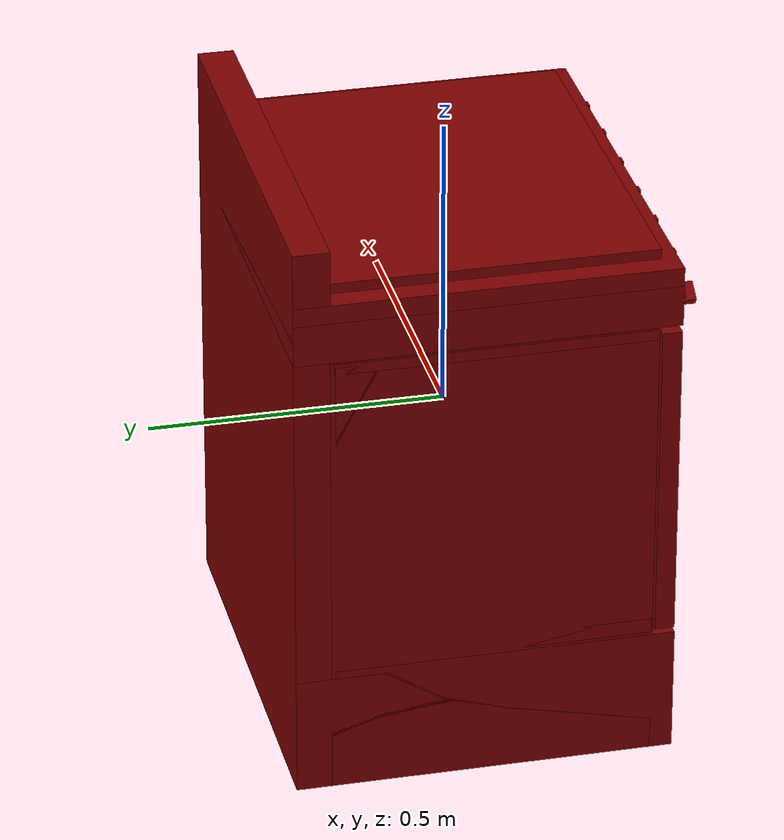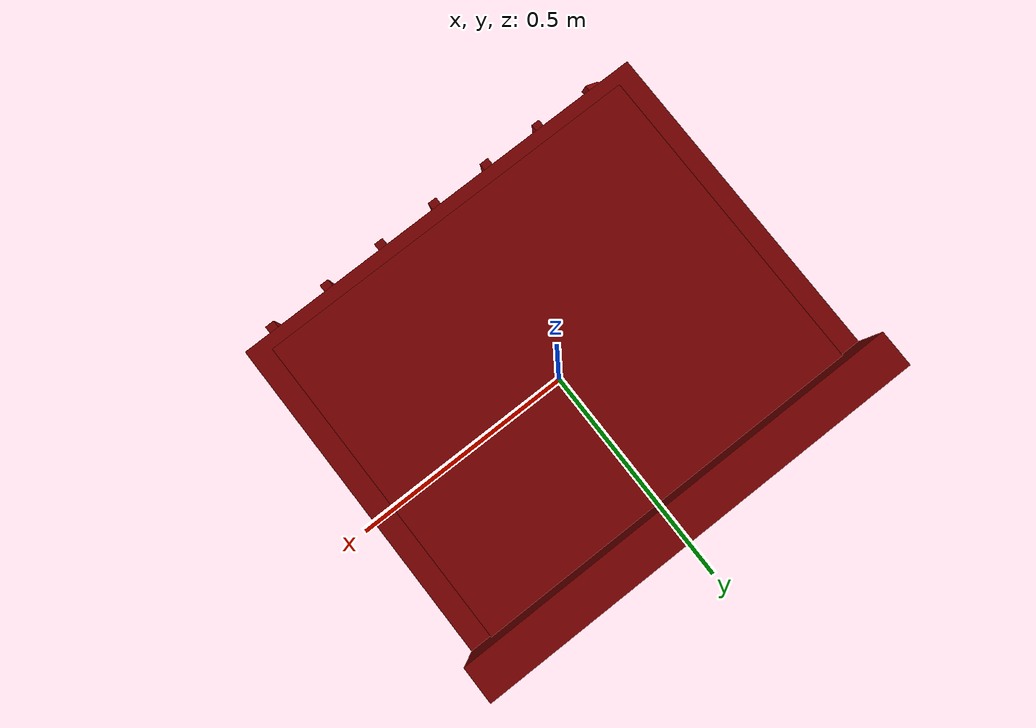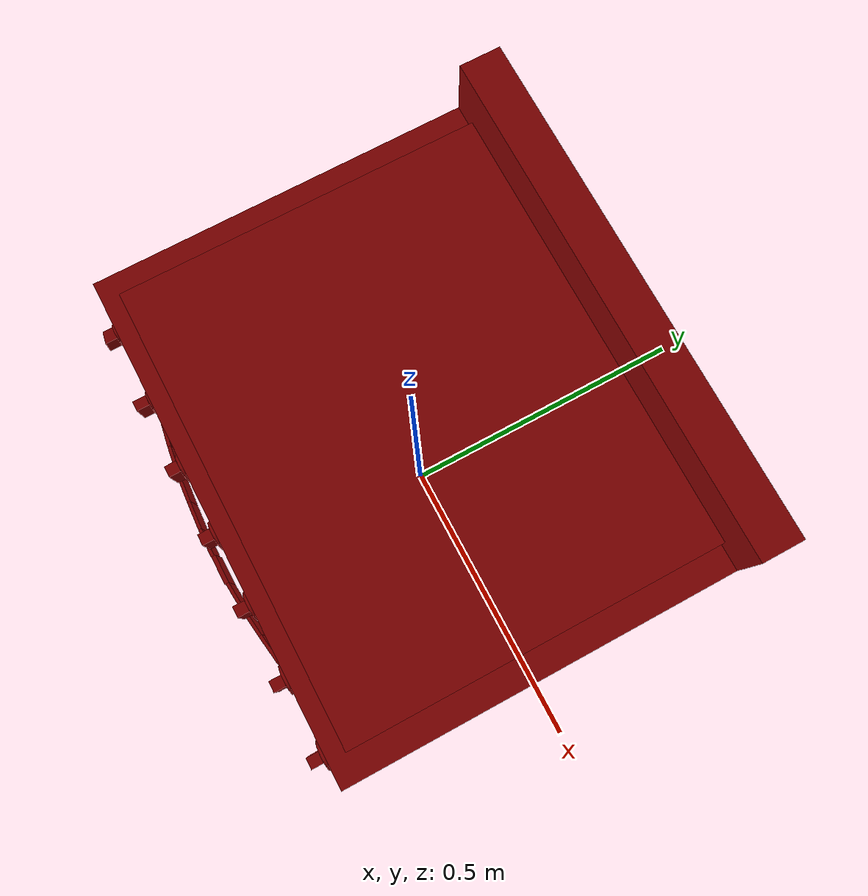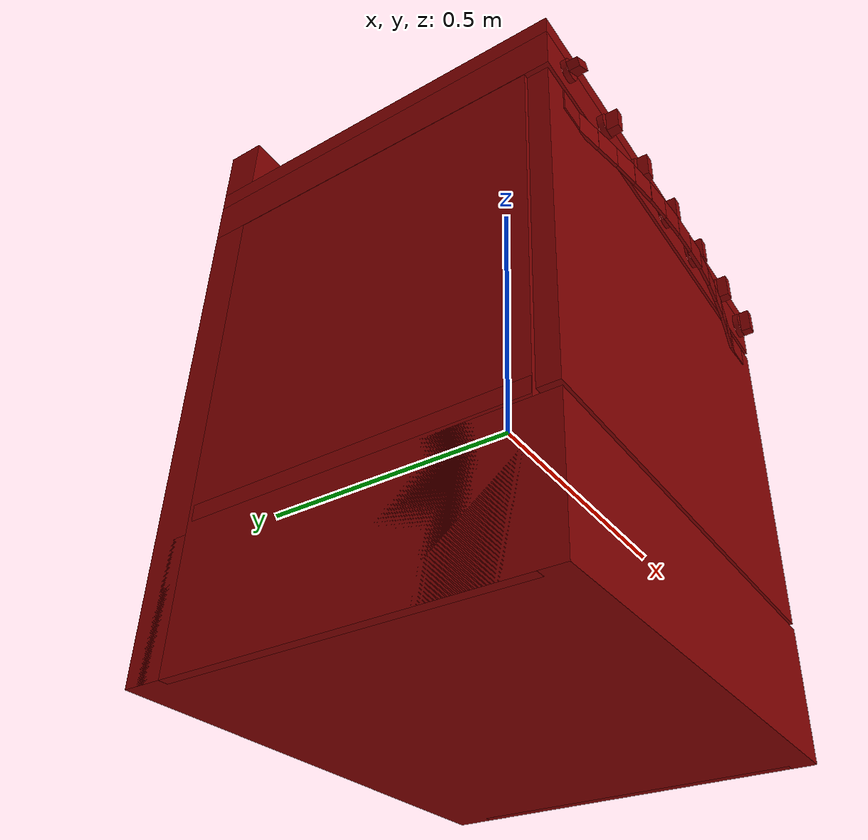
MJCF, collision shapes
<?xml version='1.0' encoding='UTF-8'?>
<mujoco model="model">
  <option timestep="0.002" gravity="0.0 0.0 -9.81"/>
  <compiler angle="radian"/>
  <asset>
    <mesh file="visuals/door.obj" name="door_vis"/>
    <mesh file="visuals/door_Clear.obj" name="door_Clear_vis"/>
    <mesh file="visuals/knob_center.obj" name="knob_center_vis"/>
    <mesh file="visuals/knob_front_left.obj" name="knob_front_left_vis"/>
    <mesh file="visuals/knob_front_right.obj" name="knob_front_right_vis"/>
    <mesh file="visuals/knob_rear_left.obj" name="knob_rear_left_vis"/>
    <mesh file="visuals/knob_rear_right.obj" name="knob_rear_right_vis"/>
    <mesh file="visuals/knob_temp.obj" name="knob_temp_vis"/>
    <mesh file="visuals/knob_time.obj" name="knob_time_vis"/>
    <mesh file="visuals/rack0.obj" name="rack0_vis"/>
    <mesh file="visuals/Body001.obj" name="Body001_vis"/>
    <texture file="visuals/T_BC001.png" name="Body001_material" type="2d"/>
    <material name="Body001_material" rgba="1 1 1 1.0" texture="Body001_material" shininess="0.1" specular="5"/>
    <texture file="visuals/T_BC001.png" name="door_material" type="2d"/>
    <material name="door_material" rgba="1 1 1 1.0" texture="door_material" shininess="0.1" specular="5"/>
    <material name="door_Clear_material" rgba="0.055541425943374634 0.055541425943374634 0.055541425943374634 0.8" shininess="0.4472135901451111" specular="0.3103448502657381"/>
    <texture file="visuals/T_BC001.png" name="knob_center_material" type="2d"/>
    <material name="knob_center_material" rgba="1 1 1 1.0" texture="knob_center_material" shininess="0.1" specular="5"/>
    <texture file="visuals/T_BC001.png" name="knob_front_left_material" type="2d"/>
    <material name="knob_front_left_material" rgba="1 1 1 1.0" texture="knob_front_left_material" shininess="0.1" specular="5"/>
    <texture file="visuals/T_BC001.png" name="knob_front_right_material" type="2d"/>
    <material name="knob_front_right_material" rgba="1 1 1 1.0" texture="knob_front_right_material" shininess="0.1" specular="5"/>
    <texture file="visuals/T_BC001.png" name="knob_rear_left_material" type="2d"/>
    <material name="knob_rear_left_material" rgba="1 1 1 1.0" texture="knob_rear_left_material" shininess="0.1" specular="5"/>
    <texture file="visuals/T_BC001.png" name="knob_rear_right_material" type="2d"/>
    <material name="knob_rear_right_material" rgba="1 1 1 1.0" texture="knob_rear_right_material" shininess="0.1" specular="5"/>
    <texture file="visuals/T_BC001.png" name="knob_temp_material" type="2d"/>
    <material name="knob_temp_material" rgba="1 1 1 1.0" texture="knob_temp_material" shininess="0.1" specular="5"/>
    <texture file="visuals/T_BC001.png" name="knob_time_material" type="2d"/>
    <material name="knob_time_material" rgba="1 1 1 1.0" texture="knob_time_material" shininess="0.1" specular="5"/>
    <texture file="visuals/T_BC001.png" name="rack0_material" type="2d"/>
    <material name="rack0_material" rgba="1 1 1 1.0" texture="rack0_material" shininess="0.1" specular="5"/>
  </asset>
  <default>
    <default class="visual">
      <geom conaffinity="0" contype="0" group="1" type="mesh"/>
    </default>
    <default class="collision">
      <geom group="0" rgba="0.5 0 0 0.5"/>
    </default>
    <default class="spawn">
      <geom group="0" rgba="1 1 1 0.5" contype="0" conaffinity="0"/>
      <site group="0" rgba="1 1 1 0.5"/>
    </default>
    <default class="region">
      <geom group="1" conaffinity="0" contype="0" rgba="0 1 0 0"/>
    </default>
  </default>
  <worldbody>
    <body>
      <body name="object">
        <geom mesh="Body001_vis" type="mesh" solimp="0.998 0.998 0.001" solref="0.001 1" friction="0.95 0.3 0.1" class="visual" material="Body001_material"/>
        <geom type="box" pos="6.490154191851616e-07 0.30399298667907715 -0.0001319174189120531" size="0.37950000166893005 0.030633658170700073 0.4929412603378296" quat="1.0 0.0 0.0 0.0" class="collision"/>
        <geom type="box" pos="9.247881962437532e-07 0.01607316918671131 0.38297146558761597" size="0.37950047850608826 0.3185533583164215 0.01605180837213993" quat="1.0 0.0 0.0 0.0" class="collision"/>
        <geom type="box" pos="-0.3719644546508789 0.005501424893736839 -0.09880691766738892" size="0.007534903474152088 0.2695953845977783 0.3942725956439972" quat="1.0 0.0 0.0 0.0" class="collision"/>
        <geom type="box" pos="0.3719663619995117 0.005501288454979658 -0.0988069400191307" size="0.007534792181104422 0.2695951461791992 0.3942723870277405" quat="1.0 0.0 0.0 0.0" class="collision"/>
        <geom type="box" pos="-0.0003282291581854224 0.002114064060151577 0.28348594903945923" size="0.37917107343673706 0.26609471440315247 0.009091421961784363" quat="1.0 0.0 0.0 0.0" class="collision"/>
        <geom type="box" pos="-0.0003283511323388666 0.0025597289204597473 -0.2571186423301697" size="0.3791711926460266 0.26564887166023254 0.01277067605406046" quat="1.0 0.0 0.0 0.0" class="collision"/>
        <geom type="box" pos="-0.00032822907087393105 -0.017137626186013222 -0.38388580083847046" size="0.37917107343673706 0.28534603118896484 0.10918741673231125" quat="1.0 0.0 0.0 0.0" class="collision"/>
        <geom type="box" pos="9.200302883982658e-07 0.2244304120540619 -0.02571159601211548" size="0.37950021028518677 0.042242273688316345 0.3127388656139374" quat="1.0 0.0 0.0 0.0" class="collision"/>
        <geom type="box" pos="5.369074642658234e-07 0.016116617247462273 -0.39065417647361755" size="0.3794998526573181 0.318509578704834 0.10241959244012833" quat="1.0 0.0 0.0 0.0" class="collision"/>
        <geom type="box" pos="0.0002088821493089199 0.002356607234105468 0.4074528217315674" size="0.3397592306137085 0.2768365144729614 0.008890227414667606" quat="1.0 0.0 0.0 0.0" class="collision"/>
        <geom type="box" pos="0.35568249225616455 -0.04684135317802429 0.024103298783302307" size="0.009308365173637867 0.2168421894311905 0.005590522196143866" quat="1.0 0.0 0.0 0.0" class="collision"/>
        <geom type="box" pos="-0.35767704248428345 -0.04684135317802429 0.024103298783302307" size="0.009308365173637867 0.2168421894311905 0.005590518936514854" quat="1.0 0.0 0.0 0.0" class="collision"/>
        <geom type="box" pos="9.133765388469328e-07 0.01607316918671131 0.33178508281707764" size="0.37950047850608826 0.3185533583164215 0.03513485565781593" quat="1.0 0.0 0.0 0.0" class="collision"/>
        <body name="door">
          <joint axis="1.0 0.0 0.0" pos="6.915070116519928e-07 -0.2990294098854065 -0.2656201124191284" limited="true" name="door_joint" range="0.0 1.5707963267948966" type="hinge" damping="1" frictionloss="1" armature=".01" stiffness="0.05"/>
          <geom mesh="door_vis" type="mesh" solimp="0.998 0.998 0.001" solref="0.001 1" friction="0.95 0.3 0.1" class="visual" material="door_material"/>
          <geom class="collision" type="box" pos="-0.0003282262769062072 -0.28507494926452637 0.009530797600746155" size="0.37917107343673706 0.016665976494550705 0.2750031352043152" quat="1.0 0.0 0.0 0.0" name="door_main"/>
          <geom type="box" pos="-0.3148961663246155 -0.30137747526168823 0.2613299787044525" size="0.022222768515348434 0.0024574706330895424 0.01903548277914524" quat="1.0 0.0 0.0 0.0" class="collision"/>
          <geom type="box" pos="-0.270940363407135 -0.30515754222869873 0.26056957244873047" size="0.0024574636481702328 0.022222571074962616 0.0205561351031065" quat="0.6362748742103577 0.0 0.0 -0.7714624404907227" class="collision"/>
          <geom type="box" pos="-0.22743520140647888 -0.3138009309768677 0.26056957244873047" size="0.0024574636481702328 0.022222571074962616 0.0205561351031065" quat="0.6362748742103577 0.0 0.0 -0.7714624404907227" class="collision"/>
          <geom type="box" pos="-0.1837860643863678 -0.32179611921310425 0.26056957244873047" size="0.0024574636481702328 0.022222576662898064 0.0205561351031065" quat="0.6439476609230042 0.0 0.0 -0.7650695443153381" class="collision"/>
          <geom type="box" pos="-0.13977670669555664 -0.3284947872161865 0.26056957244873047" size="0.0024574636481702328 0.022222567349672318 0.0205561351031065" quat="0.6602786183357239 0.0 0.0 -0.7510207295417786" class="collision"/>
          <geom type="box" pos="-0.09539932012557983 -0.33354467153549194 0.26056957244873047" size="0.0024574636481702328 0.022222572937607765 0.0205561351031065" quat="0.678578794002533 0.0 0.0 -0.7345276474952698" class="collision"/>
          <geom type="box" pos="-0.05112898722290993 -0.3366588354110718 0.26056957244873047" size="0.0024574636481702328 0.022222572937607765 0.0205561351031065" quat="0.6858806014060974 0.0 0.0 -0.7277140617370605" class="collision"/>
          <geom class="collision" type="box" pos="-0.0066461567766964436 -0.3383820056915283 0.26056957244873047" size="0.0024574636481702328 0.022222572937607765 0.0205561351031065" quat="0.7013971209526062 0.0 0.0 -0.7127707004547119" name="door_handle_main"/>
          <geom type="box" pos="0.03728786110877991 -0.33745628595352173 0.26056957244873047" size="0.022292759269475937 0.0032048900611698627 0.0205561351031065" quat="1.0 0.0 0.0 0.0" class="collision"/>
          <geom type="box" pos="0.08173882961273193 -0.335046648979187 0.26056957244873047" size="0.0024574636481702328 0.022222574800252914 0.0205561351031065" quat="0.7337282299995422 0.0 0.0 -0.6794430613517761" class="collision"/>
          <geom type="box" pos="0.1260986328125 -0.3303929567337036 0.26056957244873047" size="0.0024574636481702328 0.022222571074962616 0.0205561351031065" quat="0.7502427101135254 0.0 0.0 -0.6611624956130981" class="collision"/>
          <geom type="box" pos="0.17006200551986694 -0.32435983419418335 0.26056957244873047" size="0.0024574636481702328 0.022222578525543213 0.0205561351031065" quat="0.7568084001541138 0.0 0.0 -0.6536368131637573" class="collision"/>
          <geom type="box" pos="0.21386264264583588 -0.3166324496269226 0.26056957244873047" size="0.0024574636481702328 0.022222574800252914 0.0205561351031065" quat="0.7731620073318481 0.0 0.0 -0.6342085599899292" class="collision"/>
          <geom type="box" pos="0.25716614723205566 -0.30790263414382935 0.26056957244873047" size="0.0024574636481702328 0.022222574800252914 0.0205561351031065" quat="0.7731620073318481 0.0 0.0 -0.6342085599899292" class="collision"/>
          <geom type="box" pos="0.3008153438568115 -0.300037145614624 0.26056957244873047" size="0.0024574636481702328 0.022222571074962616 0.0205561351031065" quat="0.7578297257423401 0.0 0.0 -0.6524524092674255" class="collision"/>
          <geom type="box" pos="0.3170894980430603 -0.3001844882965088 0.2613299787044525" size="0.022301524877548218 0.003322553588077426 0.01903529278934002" quat="1.0 0.0 0.0 0.0" class="collision"/>
          <body name="door_Clear">
            <geom mesh="door_Clear_vis" type="mesh" solimp="0.998 0.998 0.001" solref="0.001 1" friction="0.95 0.3 0.1" class="visual" material="door_Clear_material"/>
            <geom type="box" pos="-0.0018881545402109623 -0.2838437557220459 0.02219078131020069" size="0.3464679718017578 0.010744373314082623 0.21997284889221191" quat="1.0 0.0 0.0 0.0" class="collision"/>
          </body>
        </body>
        <body name="knob_center">
          <joint axis="0.0 -1.0 0.0" pos="0.11236615478992462 -0.3173580765724182 0.3298296332359314" limited="true" name="knob_center_joint" range="0.0 3.141592653589793" type="hinge" damping="0.05" armature="1" frictionloss="0.75"/>
          <geom mesh="knob_center_vis" type="mesh" solimp="0.998 0.998 0.001" solref="0.001 1" friction="0.95 0.3 0.1" class="visual" material="knob_center_material"/>
          <geom type="cylinder" pos="0.11202891170978546 -0.30954474210739136 0.3293464183807373" size="0.021778227761387825 0.005089934915304184" quat="0.5 0.5 0.4999999701976776 -0.5" class="collision" friction="100 0.5 0.01"/>
          <geom type="box" pos="0.11229107528924942 -0.32348543405532837 0.3294242024421692" size="0.008317040279507637 0.008900513872504234 0.021573316305875778" quat="1.0 0.0 0.0 0.0" class="collision" name="knob_center_main" friction="100 0.5 0.01"/>
        </body>
        <body name="knob_front_left">
          <joint axis="0.0 -1.0 0.0" pos="-0.10567551106214523 -0.3173580765724182 0.32953786849975586" limited="true" name="knob_front_left_joint" range="0.0 3.141592653589793" type="hinge" damping="0.05" armature="1" frictionloss="0.75"/>
          <geom mesh="knob_front_left_vis" type="mesh" solimp="0.998 0.998 0.001" solref="0.001 1" friction="0.95 0.3 0.1" class="visual" material="knob_front_left_material"/>
          <geom type="cylinder" pos="-0.10575403273105621 -0.30954474210739136 0.3293464183807373" size="0.021778227761387825 0.005089934915304184" quat="0.5 0.5 0.4999999701976776 -0.5" class="collision" friction="100 0.5 0.01"/>
          <geom type="box" pos="-0.10549186915159225 -0.32348543405532837 0.3294242024421692" size="0.00831700675189495 0.008900513872504234 0.021573182195425034" quat="1.0 0.0 0.0 0.0" class="collision" name="knob_front_left_main" friction="100 0.5 0.01"/>
        </body>
        <body name="knob_front_right">
          <joint axis="0.0 -1.0 0.0" pos="0.3330467939376831 -0.3173580765724182 0.32981473207473755" limited="true" name="knob_front_right_joint" range="0.0 3.141592653589793" type="hinge" damping="0.05" armature="1" frictionloss="0.75"/>
          <geom mesh="knob_front_right_vis" type="mesh" solimp="0.998 0.998 0.001" solref="0.001 1" friction="0.95 0.3 0.1" class="visual" material="knob_front_right_material"/>
          <geom type="cylinder" pos="0.3326355814933777 -0.30954474210739136 0.3293464183807373" size="0.021778227761387825 0.005089934915304184" quat="0.5 0.5 0.4999999701976776 -0.5" class="collision" friction="100 0.5 0.01"/>
          <geom type="box" pos="0.33289772272109985 -0.32348543405532837 0.3294242024421692" size="0.008317043073475361 0.008900513872504234 0.021573327481746674" quat="1.0 0.0 0.0 0.0" class="collision" name="knob_front_right_main" friction="100 0.5 0.01"/>
        </body>
        <body name="knob_rear_left">
          <joint axis="0.0 -1.0 0.0" pos="0.0019752737134695053 -0.3173580765724182 0.32953786849975586" limited="true" name="knob_rear_left_joint" range="0.0 3.141592653589793" type="hinge" damping="0.05" armature="1" frictionloss="0.75"/>
          <geom mesh="knob_rear_left_vis" type="mesh" solimp="0.998 0.998 0.001" solref="0.001 1" friction="0.95 0.3 0.1" class="visual" material="knob_rear_left_material"/>
          <geom type="cylinder" pos="0.0017690521199256182 -0.30954474210739136 0.3293464183807373" size="0.021778227761387825 0.005089934915304184" quat="0.5 0.5 0.4999999701976776 -0.5" class="collision" friction="100 0.5 0.01"/>
          <geom type="box" pos="0.002031215699389577 -0.32348543405532837 0.3294242024421692" size="0.008317045867443085 0.008900513872504234 0.021573340520262718" quat="1.0 0.0 0.0 0.0" class="collision" name="knob_rear_left_main" friction="100 0.5 0.01"/>
        </body>
        <body name="knob_rear_right">
          <joint axis="0.0 -1.0 0.0" pos="0.22260557115077972 -0.3173580765724182 0.33012378215789795" limited="true" name="knob_rear_right_joint" range="0.0 3.141592653589793" type="hinge" damping="0.05" armature="1" frictionloss="0.75"/>
          <geom mesh="knob_rear_right_vis" type="mesh" solimp="0.998 0.998 0.001" solref="0.001 1" friction="0.95 0.3 0.1" class="visual" material="knob_rear_right_material"/>
          <geom type="cylinder" pos="0.2225378006696701 -0.30954474210739136 0.3296049237251282" size="0.021778227761387825 0.005089934915304184" quat="0.5 0.5 0.4999999701976776 -0.5" class="collision" friction="100 0.5 0.01"/>
          <geom type="box" pos="0.22279995679855347 -0.32348543405532837 0.32968267798423767" size="0.008317049592733383 0.008900513872504234 0.021573353558778763" quat="1.0 0.0 0.0 0.0" class="collision" name="knob_rear_right_main" friction="100 0.5 0.01"/>
        </body>
        <body name="knob_temp">
          <joint axis="0.0 1.0 0.0" pos="-0.3297589421272278 -0.3173580765724182 0.32753875851631165" limited="true" name="knob_temp_joint" range="0.0 4.363323129985823" type="hinge" damping="0.05" armature="1" frictionloss="0.75"/>
          <geom mesh="knob_temp_vis" type="mesh" solimp="0.998 0.998 0.001" solref="0.001 1" friction="0.95 0.3 0.1" class="visual" material="knob_temp_material"/>
          <geom type="cylinder" pos="-0.32981687784194946 -0.3096262216567993 0.3276185989379883" size="0.017223043367266655 0.004585263319313526" quat="0.21008674800395966 0.21008668839931488 0.675176739692688 -0.6751766800880432" class="collision" friction="100 0.5 0.01"/>
          <geom class="collision" type="box" pos="-0.3298744559288025 -0.3233341574668884 0.3275153636932373" size="0.009020081721246243 0.006863096263259649 0.01700630784034729" quat="0.6268596053123474 -0.3271808326244354 0.3271809220314026 -0.6268591284751892" name="knob_temp_main" friction="100 0.5 0.01"/>
        </body>
        <body name="knob_time">
          <joint axis="0.0 1.0 0.0" pos="-0.21431638300418854 -0.31687605381011963 0.3258565068244934" limited="true" name="knob_time_joint" range="0.0 4.014257279586958" type="hinge" damping="0.05" armature="1" frictionloss="0.75"/>
          <geom mesh="knob_time_vis" type="mesh" solimp="0.998 0.998 0.001" solref="0.001 1" friction="0.95 0.3 0.1" class="visual" material="knob_time_material"/>
          <geom type="cylinder" pos="-0.21430985629558563 -0.308935284614563 0.325877845287323" size="0.019157784059643745 0.005100345704704523" quat="0.5018575191497803 0.5019059181213379 -0.4980872869491577 0.4981350600719452" class="collision" friction="100 0.5 0.01"/>
          <geom class="collision" type="box" pos="-0.21436633169651031 -0.3239622116088867 0.32633745670318604" size="0.007558888290077448 0.009881828911602497 0.018647173419594765" quat="1.0 0.0 0.0 0.0" name="knob_time_main" friction="100 0.5 0.01"/>
        </body>
        <body name="rack0">
          <geom class="region" name="reg_rack0" type="box" pos="-0.001135304570198059 -0.04560874402523041 0.154441449791193" size="0.3418627361059189 0.2033354321718216 0.11046699604392052"/>
          <joint axis="0.0 -1.0 0.0" pos="-0.0014163809828460217 -0.045786283910274506 0.03486105799674988" limited="true" name="rack0_joint" range="0.0 0.35" type="slide" damping="1" frictionloss="1" armature=".01" stiffness="0.05"/>
          <geom mesh="rack0_vis" type="mesh" solimp="0.998 0.998 0.001" solref="0.001 1" friction="0.95 0.3 0.1" class="visual" material="rack0_material"/>
          <geom type="box" pos="-0.001008454943075776 -0.04573242366313934 0.034881461411714554" size="0.3534037172794342 0.20836016535758972 0.004014792386442423" quat="1.0 0.0 0.0 0.0" class="collision"/>
        </body>
        <geom class="region" name="reg_int" type="box" pos="-0.001135304570198059 -0.040598347783088684 0.01787400245666504" size="0.3418627361059189 0.21815886890888214 0.2517888078689575"/>
        <site type="cylinder" rgba="0.3 0.4 1 0.5" size="0.04910412058234215 0.009300893172621727" pos="-0.1791195273399353 0.08587392419576645 0.402950257062912" name="burner_on_rear_left"/>
        <site type="cylinder" rgba="0.3 0.4 1 0.5" size="0.04910412058234215 0.009300893172621727" pos="0.17771181464195251 0.08587392419576645 0.402950257062912" name="burner_on_rear_right"/>
        <site type="cylinder" rgba="0.3 0.4 1 0.5" size="0.04910412058234215 0.009300893172621727" pos="0.1781647503376007 -0.11547911912202835 0.402950257062912" name="burner_on_front_right"/>
        <site type="cylinder" rgba="0.3 0.4 1 0.5" size="0.03738318011164665 0.009300893172621727" pos="0.0014605133328586817 -0.017544277012348175 0.40311214327812195" name="burner_on_center"/>
        <site type="cylinder" rgba="0.3 0.4 1 0.5" size="0.04910412058234215 0.009300893172621727" pos="-0.17922016978263855 -0.11620382219552994 0.402950257062912" name="burner_on_front_left"/>
        <site type="cylinder" rgba="0.5 0 0 0" size="0.04910412058234215 5.000006785849109e-05" pos="-0.17922018468379974 -0.11620383709669113 0.41639259457588196" name="burner_front_left_place_site"/>
        <site type="cylinder" rgba="0.5 0 0 0" size="0.04910413175821304 5.000006785849109e-05" pos="0.1777118295431137 0.08587393909692764 0.41639259457588196" name="burner_rear_right_place_site"/>
        <site type="cylinder" rgba="0.5 0 0 0" size="0.04910412058234215 5.000006785849109e-05" pos="-0.1791195422410965 0.08587393909692764 0.41639259457588196" name="burner_rear_left_place_site"/>
        <site type="cylinder" rgba="0.5 0 0 0" size="0.04910412058234215 5.000002420274541e-05" pos="0.1781647503376007 -0.11547911912202835 0.41639256477355957" name="burner_front_right_place_site"/>
        <site type="cylinder" rgba="0.5 0 0 0" size="0.03738318011164665 4.998933945898898e-05" pos="0.0014605133328586817 -0.017544277012348175 0.41639259457588196" name="burner_center_place_site"/>
        <geom class="region" name="reg_main" type="box" pos="7.003545761108398e-07 0.016073167324066162 -0.047034651041030884" size="0.38050003147125244 0.31955309009552 0.44703851437568665"/>
      </body>
    </body>
  </worldbody>
  <actuator>
    <motor name="door_joint_actuator" joint="door_joint" gear="50"/>
    <motor name="knob_center_joint_actuator" joint="knob_center_joint" gear="50"/>
    <motor name="knob_front_left_joint_actuator" joint="knob_front_left_joint" gear="50"/>
    <motor name="knob_front_right_joint_actuator" joint="knob_front_right_joint" gear="50"/>
    <motor name="knob_rear_left_joint_actuator" joint="knob_rear_left_joint" gear="50"/>
    <motor name="knob_rear_right_joint_actuator" joint="knob_rear_right_joint" gear="50"/>
    <motor name="knob_temp_joint_actuator" joint="knob_temp_joint" gear="50"/>
    <motor name="knob_time_joint_actuator" joint="knob_time_joint" gear="50"/>
    <motor name="rack0_joint_actuator" joint="rack0_joint" gear="50"/>
  </actuator>
</mujoco>
